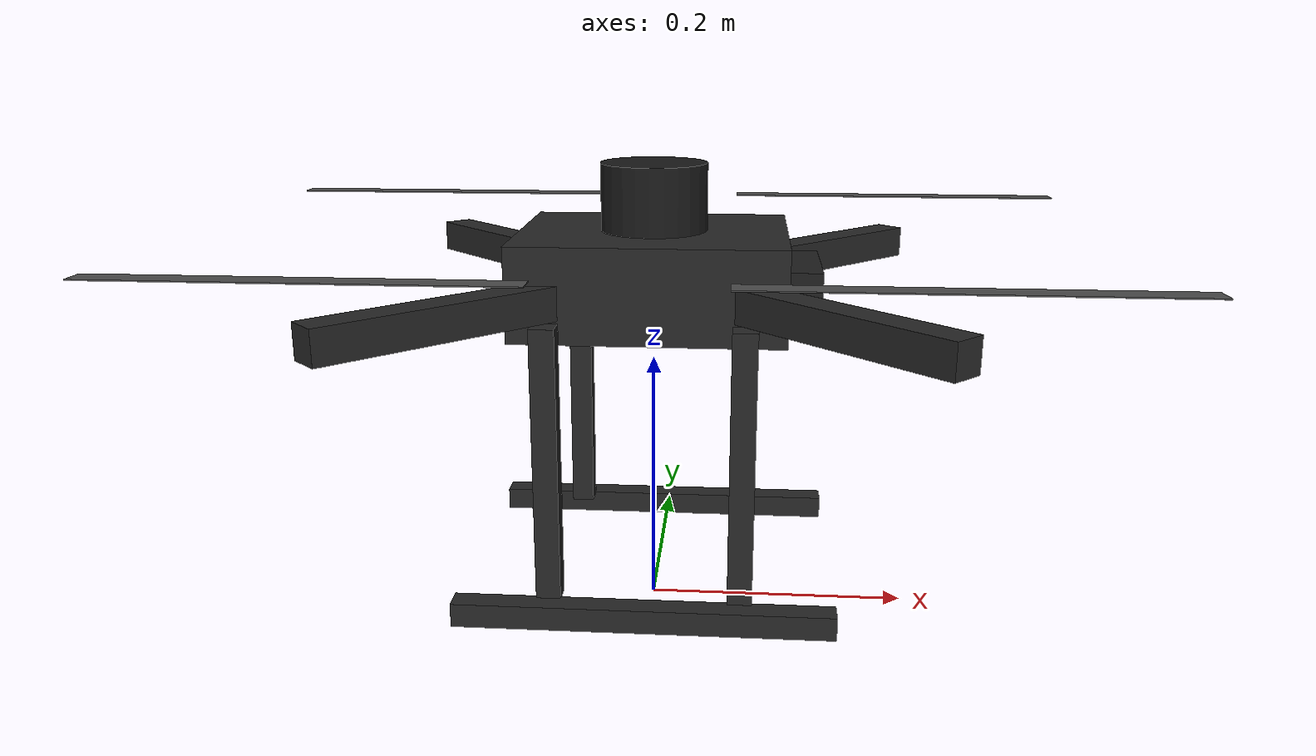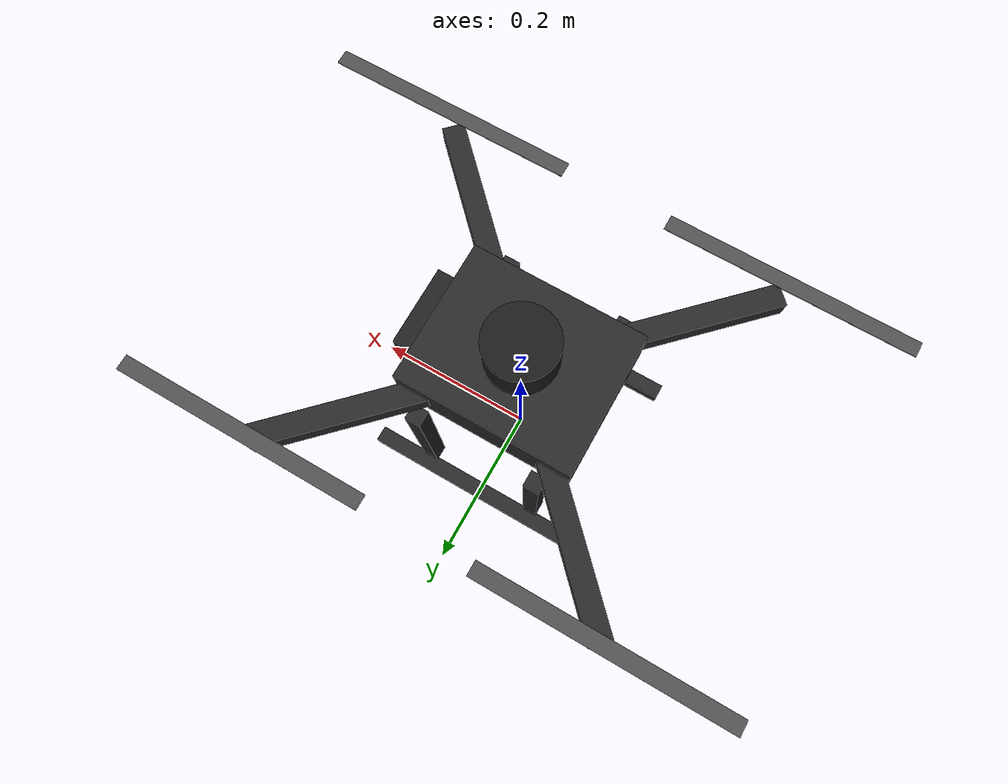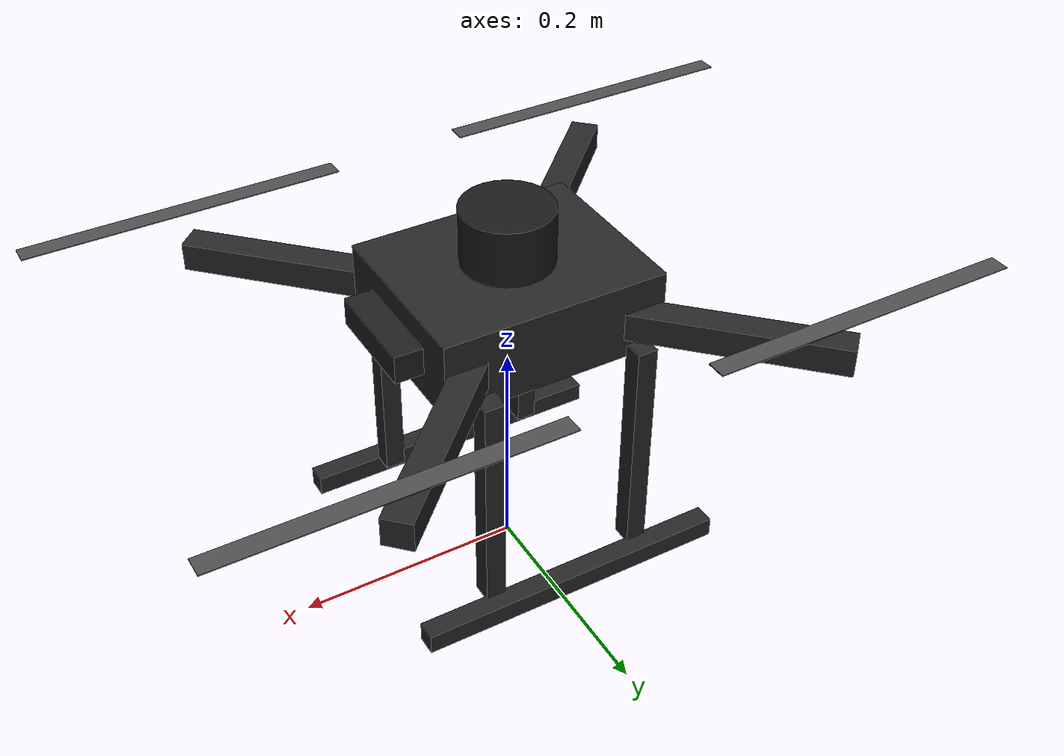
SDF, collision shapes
<?xml version="1.0" encoding="UTF-8"?>
<sdf version='1.9'>
  <model name='slam_quad_base'>
    <pose>0 0 .24 0 0 0</pose>
    <self_collide>false</self_collide>
    <static>false</static>
    <link name="base_link">
      <inertial>
        <!-- Approximate M3B-2 frame mass model: 1.80 kg base structure. -->
        <!-- The four rotor links keep their existing masses separately. -->
        <pose>0 0 -0.0034 0 0 0</pose>
        <mass>1.8</mass>
        <inertia>
          <ixx>0.01808</ixx>
          <ixy>0</ixy>
          <ixz>0</ixz>
          <iyy>0.01798</iyy>
          <iyz>0</iyz>
          <izz>0.01886</izz>
        </inertia>
      </inertial>
      <gravity>true</gravity>
      <velocity_decay />
      <!-- CUSTOM SLAM QUAD BODY           -->

      <visual name="custom_body_visual">
        <pose>0 0 0.025 0 0 0</pose>
        <geometry>
          <box>
            <size>0.20 0.16 0.07</size>
          </box>
        </geometry>
        <material>
          <ambient>0.10 0.10 0.10 1</ambient>
          <diffuse>0.15 0.15 0.15 1</diffuse>
        </material>
      </visual>

      <!-- Front-left arm -->
      <visual name="arm_fl_visual">
        <pose>0.100 0.100 0.02 0 0 0.785398</pose>
        <geometry>
          <box>
            <size>0.282843 0.025 0.025</size>
          </box>
        </geometry>
        <material>
          <ambient>0.12 0.12 0.12 1</ambient>
          <diffuse>0.18 0.18 0.18 1</diffuse>
        </material>
      </visual>

      <!-- Rear-left arm -->
      <visual name="arm_rl_visual">
        <pose>-0.100 0.100 0.02 0 0 2.356194</pose>
        <geometry>
          <box>
            <size>0.282843 0.025 0.025</size>
          </box>
        </geometry>
        <material>
          <ambient>0.12 0.12 0.12 1</ambient>
          <diffuse>0.18 0.18 0.18 1</diffuse>
        </material>
      </visual>

      <!-- Front-right arm -->
      <visual name="arm_fr_visual">
        <pose>0.100 -0.100 0.02 0 0 -0.785398</pose>
        <geometry>
          <box>
            <size>0.282843 0.025 0.025</size>
          </box>
        </geometry>
        <material>
          <ambient>0.12 0.12 0.12 1</ambient>
          <diffuse>0.18 0.18 0.18 1</diffuse>
        </material>
      </visual>

      <!-- Rear-right arm -->
      <visual name="arm_rr_visual">
        <pose>-0.100 -0.100 0.02 0 0 -2.356194</pose>
        <geometry>
          <box>
            <size>0.282843 0.025 0.025</size>
          </box>
        </geometry>
        <material>
          <ambient>0.12 0.12 0.12 1</ambient>
          <diffuse>0.18 0.18 0.18 1</diffuse>
        </material>
      </visual>
      <!-- CUSTOM LANDING SKIDS            -->

      <visual name="skid_support_fl_visual">
        <pose>0.07 0.095 -0.095 0 0 0</pose>
        <geometry>
          <box>
            <size>0.018 0.018 0.205</size>
          </box>
        </geometry>
        <material>
          <ambient>0.22 0.22 0.22 1</ambient>
          <diffuse>0.28 0.28 0.28 1</diffuse>
        </material>
      </visual>

      <visual name="skid_support_rl_visual">
        <pose>-0.07 0.095 -0.095 0 0 0</pose>
        <geometry>
          <box>
            <size>0.018 0.018 0.205</size>
          </box>
        </geometry>
        <material>
          <ambient>0.22 0.22 0.22 1</ambient>
          <diffuse>0.28 0.28 0.28 1</diffuse>
        </material>
      </visual>

      <visual name="skid_support_fr_visual">
        <pose>0.07 -0.095 -0.095 0 0 0</pose>
        <geometry>
          <box>
            <size>0.018 0.018 0.205</size>
          </box>
        </geometry>
        <material>
          <ambient>0.22 0.22 0.22 1</ambient>
          <diffuse>0.28 0.28 0.28 1</diffuse>
        </material>
      </visual>

      <visual name="skid_support_rr_visual">
        <pose>-0.07 -0.095 -0.095 0 0 0</pose>
        <geometry>
          <box>
            <size>0.018 0.018 0.205</size>
          </box>
        </geometry>
        <material>
          <ambient>0.22 0.22 0.22 1</ambient>
          <diffuse>0.28 0.28 0.28 1</diffuse>
        </material>
      </visual>

      <visual name="skid_left_visual">
        <pose>0 0.11 -0.205 0 0 0</pose>
        <geometry>
          <box>
            <size>0.28 0.018 0.018</size>
          </box>
        </geometry>
        <material>
          <ambient>0.30 0.30 0.30 1</ambient>
          <diffuse>0.38 0.38 0.38 1</diffuse>
        </material>
      </visual>

      <visual name="skid_right_visual">
        <pose>0 -0.11 -0.205 0 0 0</pose>
        <geometry>
          <box>
            <size>0.28 0.018 0.018</size>
          </box>
        </geometry>
        <material>
          <ambient>0.30 0.30 0.30 1</ambient>
          <diffuse>0.38 0.38 0.38 1</diffuse>
        </material>
      </visual>
      <visual name="5010_motor_base_0">
        <pose>0.200 0.200 .032 0 0 -.45</pose>
        <geometry>
          <mesh>
            <scale>1 1 1</scale>
            <uri>model://slam_quad_base/meshes/5010Base.dae</uri>
          </mesh>
        </geometry>
      </visual>
      <visual name="5010_motor_base_1">
        <pose>-0.200 0.200 .032 0 0 -.45</pose>
        <geometry>
          <mesh>
            <scale>1 1 1</scale>
            <uri>model://slam_quad_base/meshes/5010Base.dae</uri>
          </mesh>
        </geometry>
      </visual>
      <visual name="5010_motor_base_2">
        <pose>0.200 -0.200 .032 0 0 -.45</pose>
        <geometry>
          <mesh>
            <scale>1 1 1</scale>
            <uri>model://slam_quad_base/meshes/5010Base.dae</uri>
          </mesh>
        </geometry>
      </visual>
      <visual name="5010_motor_base_3">
        <pose>-0.200 -0.200 .032 0 0 -.45</pose>
        <geometry>
          <mesh>
            <scale>1 1 1</scale>
            <uri>model://slam_quad_base/meshes/5010Base.dae</uri>
          </mesh>
        </geometry>
      </visual>
      <visual name="NXP_FMUK66_FRONT">
        <pose>0.047 .001 .043 1 0 1.57</pose>
        <cast_shadows>false</cast_shadows>
        <geometry>
          <plane>
            <normal>0 0 1</normal>
            <size>.013 .007</size>
          </plane>
        </geometry>
        <material>
          <diffuse>1.0 1.0 1.0</diffuse>
          <specular>1.0 1.0 1.0</specular>
          <pbr>
            <metal>
              <albedo_map>model://slam_quad_base/materials/textures/nxp.png</albedo_map>
            </metal>
          </pbr>
        </material>
      </visual>
      <visual name="NXP_FMUK66_TOP">
        <pose>-0.023 0 .0515 0 0 -1.57</pose>
        <cast_shadows>false</cast_shadows>
        <geometry>
          <plane>
            <normal>0 0 1</normal>
            <size>.013 .007</size>
          </plane>
        </geometry>
        <material>
          <diffuse>1.0 1.0 1.0</diffuse>
          <specular>1.0 1.0 1.0</specular>
          <pbr>
            <metal>
              <albedo_map>model://slam_quad_base/materials/textures/nxp.png</albedo_map>
            </metal>
          </pbr>
        </material>
      </visual>
      <visual name="RDDRONE_FMUK66_TOP">
        <pose>-.03 0 .0515 0 0 -1.57</pose>
        <cast_shadows>false</cast_shadows>
        <geometry>
          <plane>
            <normal>0 0 1</normal>
            <size>.032 .0034</size>
          </plane>
        </geometry>
        <material>
          <diffuse>1.0 1.0 1.0</diffuse>
          <specular>1.0 1.0 1.0</specular>
          <pbr>
            <metal>
              <albedo_map>model://slam_quad_base/materials/textures/rd.png</albedo_map>
            </metal>
          </pbr>
        </material>
      </visual>
      <!-- CUSTOM FRAME COLLISIONS         -->

      <collision name="body_collision">
        <pose>0 0 0.025 0 0 0</pose>
        <geometry>
          <box>
            <size>0.20 0.16 0.07</size>
          </box>
        </geometry>
      </collision>

      <collision name="arm_fl_collision">
        <pose>0.100 0.100 0.02 0 0 0.785398</pose>
        <geometry>
          <box>
            <size>0.282843 0.025 0.025</size>
          </box>
        </geometry>
      </collision>

      <collision name="arm_rl_collision">
        <pose>-0.100 0.100 0.02 0 0 2.356194</pose>
        <geometry>
          <box>
            <size>0.282843 0.025 0.025</size>
          </box>
        </geometry>
      </collision>

      <collision name="arm_fr_collision">
        <pose>0.100 -0.100 0.02 0 0 -0.785398</pose>
        <geometry>
          <box>
            <size>0.282843 0.025 0.025</size>
          </box>
        </geometry>
      </collision>

      <collision name="arm_rr_collision">
        <pose>-0.100 -0.100 0.02 0 0 -2.356194</pose>
        <geometry>
          <box>
            <size>0.282843 0.025 0.025</size>
          </box>
        </geometry>
      </collision>

      <collision name="skid_support_fl_collision">
        <pose>0.07 0.095 -0.095 0 0 0</pose>
        <geometry>
          <box>
            <size>0.018 0.018 0.205</size>
          </box>
        </geometry>
      </collision>

      <collision name="skid_support_rl_collision">
        <pose>-0.07 0.095 -0.095 0 0 0</pose>
        <geometry>
          <box>
            <size>0.018 0.018 0.205</size>
          </box>
        </geometry>
      </collision>

      <collision name="skid_support_fr_collision">
        <pose>0.07 -0.095 -0.095 0 0 0</pose>
        <geometry>
          <box>
            <size>0.018 0.018 0.205</size>
          </box>
        </geometry>
      </collision>

      <collision name="skid_support_rr_collision">
        <pose>-0.07 -0.095 -0.095 0 0 0</pose>
        <geometry>
          <box>
            <size>0.018 0.018 0.205</size>
          </box>
        </geometry>
      </collision>

      <collision name="skid_left_collision">
        <pose>0 0.11 -0.205 0 0 0</pose>
        <geometry>
          <box>
            <size>0.28 0.018 0.018</size>
          </box>
        </geometry>
        <surface>
          <contact>
            <ode>
              <min_depth>0.001</min_depth>
              <max_vel>0</max_vel>
            </ode>
          </contact>
          <friction>
            <ode />
          </friction>
        </surface>
      </collision>

      <collision name="skid_right_collision">
        <pose>0 -0.11 -0.205 0 0 0</pose>
        <geometry>
          <box>
            <size>0.28 0.018 0.018</size>
          </box>
        </geometry>
        <surface>
          <contact>
            <ode>
              <min_depth>0.001</min_depth>
              <max_vel>0</max_vel>
            </ode>
          </contact>
          <friction>
            <ode />
          </friction>
        </surface>
      </collision>
      <sensor name="air_pressure_sensor" type="air_pressure">
        <gz_frame_id>base_link</gz_frame_id>
        <always_on>1</always_on>
        <update_rate>50</update_rate>
        <air_pressure>
          <!-- Noise modeled after BMP390 -->
          <pressure>
            <noise type="gaussian">
              <mean>0</mean>
              <stddev>3</stddev>
            </noise>
          </pressure>
        </air_pressure>
      </sensor>
      <sensor name="magnetometer_sensor" type="magnetometer">
        <gz_frame_id>base_link</gz_frame_id>
        <always_on>1</always_on>
        <update_rate>100</update_rate>
        <magnetometer>
          <!-- TODO: update to fix units and coordinate system when we move past Harmonic -->
          <!-- See https://github.com/gazebosim/gz-sim/pull/2460 -->
          <!-- 3mgauss RMS: NOTE: noise is in tesla but sensor reports data in gauss -->
          <!-- Noise modeled after IIS2MDC -->
          <x>
            <noise type="gaussian">
              <stddev>0.0001</stddev>
            </noise>
          </x>
          <y>
            <noise type="gaussian">
              <stddev>0.0001</stddev>
            </noise>
          </y>
          <z>
            <noise type="gaussian">
              <stddev>0.0001</stddev>
            </noise>
          </z>
        </magnetometer>
      </sensor>
      <sensor name="imu_sensor" type="imu">
        <gz_frame_id>base_link</gz_frame_id>
        <always_on>1</always_on>
        <update_rate>250</update_rate>
        <imu>
          <angular_velocity>
            <!-- Noise modeled after IIM42653 -->
            <!-- 0.05 deg/s converted to rad/s -->
            <x>
              <noise type="gaussian">
                <mean>0.0</mean>
                <stddev>0.0008726646</stddev>
              </noise>
            </x>
            <y>
              <noise type="gaussian">
                <mean>0.0</mean>
                <stddev>0.0008726646</stddev>
              </noise>
            </y>
            <z>
              <noise type="gaussian">
                <mean>0.0</mean>
                <stddev>0.0008726646</stddev>
              </noise>
            </z>
          </angular_velocity>
          <linear_acceleration>
            <!-- Noise modeled after IIM42653 -->
            <!-- X & Y axis: 0.65 mg-rms converted to m/ss -->
            <x>
              <noise type="gaussian">
                <mean>0.0</mean>
                <stddev>0.00637</stddev>
              </noise>
            </x>
            <y>
              <noise type="gaussian">
                <mean>0.0</mean>
                <stddev>0.00637</stddev>
              </noise>
            </y>
            <!-- Z axis: 0.70 mg-rms converted to m/ss-->
            <z>
              <noise type="gaussian">
                <mean>0.0</mean>
                <stddev>0.00686</stddev>
              </noise>
            </z>
          </linear_acceleration>
        </imu>
      </sensor>
      <sensor name="navsat_sensor" type="navsat">
        <gz_frame_id>base_link</gz_frame_id>
        <always_on>1</always_on>
        <update_rate>30</update_rate>
      </sensor>
    </link>
    <!-- 3D LIDAR                                               -->

    <link name="lidar_link">
      <pose relative_to="base_link">0 0 0.085 0 0 0</pose>

      <!-- Placeholder physical properties for compact 3D LiDAR -->
      <inertial>
        <mass>0.15</mass>
        <inertia>
          <ixx>0.00009125</ixx>
          <ixy>0</ixy>
          <ixz>0</ixz>
          <iyy>0.00009125</iyy>
          <iyz>0</iyz>
          <izz>0.00012</izz>
        </inertia>
      </inertial>

      <visual name="lidar_visual">
        <geometry>
          <cylinder>
            <radius>0.04</radius>
            <length>0.05</length>
          </cylinder>
        </geometry>
        <material>
          <ambient>0.05 0.05 0.05 1</ambient>
          <diffuse>0.10 0.10 0.10 1</diffuse>
        </material>
      </visual>

      <collision name="lidar_collision">
        <geometry>
          <cylinder>
            <radius>0.04</radius>
            <length>0.05</length>
          </cylinder>
        </geometry>
      </collision>

      <sensor name="gpu_lidar" type="gpu_lidar">
        <gz_frame_id>lidar_link</gz_frame_id>

        <topic>/slam_quad/lidar</topic>

        <update_rate>10</update_rate>

        <lidar>
          <scan>

            <horizontal>
              <samples>640</samples>
              <resolution>1</resolution>
              <min_angle>-3.14159265</min_angle>
              <max_angle>3.14159265</max_angle>
            </horizontal>

            <vertical>
              <samples>32</samples>
              <resolution>1</resolution>
              <min_angle>-0.261799</min_angle>
              <max_angle>0.261799</max_angle>
            </vertical>

          </scan>

          <range>
            <min>0.20</min>
            <max>20.0</max>
            <resolution>0.01</resolution>
          </range>
        </lidar>

        <always_on>1</always_on>
        <visualize>false</visualize>
      </sensor>
    </link>

    <joint name="lidar_joint" type="fixed">
      <parent>base_link</parent>
      <child>lidar_link</child>
    </joint>
    <!-- FRONT-FACING RGB-D CAMERA                              -->

    <link name="camera_link">

      <!-- Mounted against the front (+X) face of the body -->
      <pose relative_to="base_link">0.1125 0 0.025 0 0 0</pose>

      <inertial>
        <mass>0.072</mass>
        <inertia>
          <ixx>0.000053</ixx>
          <ixy>0</ixy>
          <ixz>0</ixz>
          <iyy>0.000005</iyy>
          <iyz>0</iyz>
          <izz>0.000053</izz>
        </inertia>
      </inertial>

      <visual name="camera_visual">
        <geometry>
          <box>
            <size>0.025 0.090 0.025</size>
          </box>
        </geometry>

        <material>
          <ambient>0.08 0.08 0.08 1</ambient>
          <diffuse>0.12 0.12 0.12 1</diffuse>
        </material>
      </visual>

      <collision name="camera_collision">
        <geometry>
          <box>
            <size>0.025 0.090 0.025</size>
          </box>
        </geometry>
      </collision>

      <sensor name="rgbd_camera" type="rgbd_camera">

        <gz_frame_id>camera_link</gz_frame_id>

        <camera>

          <optical_frame_id>camera_optical_frame</optical_frame_id>

          <horizontal_fov>1.047</horizontal_fov>

          <image>
            <width>320</width>
            <height>240</height>
          </image>

          <clip>
            <near>0.15</near>
            <far>10.0</far>
          </clip>
        </camera>

        <always_on>1</always_on>

        <!-- Moderate rate to avoid unnecessarily loading the PC -->
        <update_rate>10</update_rate>

        <visualize>false</visualize>

        <topic>/slam_quad/rgbd</topic>

      </sensor>
    </link>

    <joint name="camera_joint" type="fixed">
      <parent>base_link</parent>
      <child>camera_link</child>
    </joint>
    <link name="rotor_0">
      <gravity>true</gravity>
      <self_collide>false</self_collide>
      <velocity_decay />
      <pose>0.200 -0.200 0.06 0 0 0</pose>
      <inertial>
        <mass>0.016076923076923075</mass>
        <inertia>
          <ixx>3.8464910483993325e-07</ixx>
          <iyy>2.6115851691700804e-05</iyy>
          <izz>2.649858234714004e-05</izz>
        </inertia>
      </inertial>
      <visual name="rotor_0_visual">
        <pose>-0.022 -0.14638461538461536 -0.016 0 0 0</pose>
        <geometry>
          <mesh>
            <scale>0.8461538461538461 0.8461538461538461 0.8461538461538461</scale>
            <uri>model://slam_quad_base/meshes/1345_prop_ccw.stl</uri>
          </mesh>
        </geometry>
        <material>
          <script>
            <name>Gazebo/DarkGrey</name>
            <uri>file://media/materials/scripts/gazebo.material</uri>
          </script>
        </material>
      </visual>
      <visual name="rotor_0_visual_motor_bell">
        <pose>0 0 -.032 0 0 0</pose>
        <geometry>
          <mesh>
            <scale>1 1 1</scale>
            <uri>model://slam_quad_base/meshes/5010Bell.dae</uri>
          </mesh>
        </geometry>
      </visual>
      <collision name="rotor_0_collision">
        <pose>0 0 0 0 0 0 </pose>
        <geometry>
          <box>
            <size>0.2792307692307692 0.016923076923076923 0.0008461538461538462</size>
          </box>
        </geometry>
        <surface>
          <contact>
            <ode>
              <min_depth>0.001</min_depth>
              <max_vel>0</max_vel>
            </ode>
          </contact>
          <friction>
            <ode />
          </friction>
        </surface>
      </collision>
    </link>
    <joint name="rotor_0_joint" type="revolute">
      <parent>base_link</parent>
      <child>rotor_0</child>
      <axis>
        <xyz>0 0 1</xyz>
        <limit>
          <lower>-1e+16</lower>
          <upper>1e+16</upper>
        </limit>
        <dynamics>
          <spring_reference>0</spring_reference>
          <spring_stiffness>0</spring_stiffness>
        </dynamics>
      </axis>
    </joint>
    <link name="rotor_1">
      <gravity>true</gravity>
      <self_collide>false</self_collide>
      <velocity_decay />
      <pose>-0.200 0.200 0.06 0 0 0</pose>
      <inertial>
        <mass>0.016076923076923075</mass>
        <inertia>
          <ixx>3.8464910483993325e-07</ixx>
          <iyy>2.6115851691700804e-05</iyy>
          <izz>2.649858234714004e-05</izz>
        </inertia>
      </inertial>
      <visual name="rotor_1_visual">
        <pose>-0.022 -0.14638461538461536 -0.016 0 0 0</pose>
        <geometry>
          <mesh>
            <scale>0.8461538461538461 0.8461538461538461 0.8461538461538461</scale>
            <uri>model://slam_quad_base/meshes/1345_prop_ccw.stl</uri>
          </mesh>
        </geometry>
        <material>
          <script>
            <name>Gazebo/DarkGrey</name>
            <uri>file://media/materials/scripts/gazebo.material</uri>
          </script>
        </material>
      </visual>
      <visual name="rotor_1_visual_motor_top">
        <pose>0 0 -.032 0 0 0</pose>
        <geometry>
          <mesh>
            <scale>1 1 1</scale>
            <uri>model://slam_quad_base/meshes/5010Bell.dae</uri>
          </mesh>
        </geometry>
      </visual>
      <collision name="rotor_1_collision">
        <pose>0 0 0 0 0 0 </pose>
        <geometry>
          <box>
            <size>0.2792307692307692 0.016923076923076923 0.0008461538461538462</size>
          </box>
        </geometry>
        <surface>
          <contact>
            <ode>
              <min_depth>0.001</min_depth>
              <max_vel>0</max_vel>
            </ode>
          </contact>
          <friction>
            <ode />
          </friction>
        </surface>
      </collision>
    </link>
    <joint name="rotor_1_joint" type="revolute">
      <parent>base_link</parent>
      <child>rotor_1</child>
      <axis>
        <xyz>0 0 1</xyz>
        <limit>
          <lower>-1e+16</lower>
          <upper>1e+16</upper>
        </limit>
        <dynamics>
          <spring_reference>0</spring_reference>
          <spring_stiffness>0</spring_stiffness>
        </dynamics>
      </axis>
    </joint>
    <link name="rotor_2">
      <gravity>true</gravity>
      <self_collide>false</self_collide>
      <velocity_decay />
      <pose>0.200 0.200 0.06 0 0 0</pose>
      <inertial>
        <mass>0.016076923076923075</mass>
        <inertia>
          <ixx>3.8464910483993325e-07</ixx>
          <iyy>2.6115851691700804e-05</iyy>
          <izz>2.649858234714004e-05</izz>
        </inertia>
      </inertial>
      <visual name="rotor_2_visual">
        <pose>-0.022 -0.14638461538461536 -0.016 0 0 0</pose>
        <geometry>
          <mesh>
            <scale>0.8461538461538461 0.8461538461538461 0.8461538461538461</scale>
            <uri>model://slam_quad_base/meshes/1345_prop_cw.stl</uri>
          </mesh>
        </geometry>
        <material>
          <script>
            <name>Gazebo/DarkGrey</name>
            <uri>file://media/materials/scripts/gazebo.material</uri>
          </script>
        </material>
      </visual>
      <visual name="rotor_2_visual_motor_top">
        <pose>0 0 -.032 0 0 0</pose>
        <geometry>
          <mesh>
            <scale>1 1 1</scale>
            <uri>model://slam_quad_base/meshes/5010Bell.dae</uri>
          </mesh>
        </geometry>
      </visual>
      <collision name="rotor_2_collision">
        <pose>0 0 0 0 0 0 </pose>
        <geometry>
          <box>
            <size>0.2792307692307692 0.016923076923076923 0.0008461538461538462</size>
          </box>
        </geometry>
        <surface>
          <contact>
            <ode>
              <min_depth>0.001</min_depth>
              <max_vel>0</max_vel>
            </ode>
          </contact>
          <friction>
            <ode />
          </friction>
        </surface>
      </collision>
    </link>
    <joint name="rotor_2_joint" type="revolute">
      <parent>base_link</parent>
      <child>rotor_2</child>
      <axis>
        <xyz>0 0 1</xyz>
        <limit>
          <lower>-1e+16</lower>
          <upper>1e+16</upper>
        </limit>
        <dynamics>
          <spring_reference>0</spring_reference>
          <spring_stiffness>0</spring_stiffness>
        </dynamics>
      </axis>
    </joint>
    <link name="rotor_3">
      <gravity>true</gravity>
      <self_collide>false</self_collide>
      <velocity_decay />
      <pose>-0.200 -0.200 0.06 0 0 0</pose>
      <inertial>
        <mass>0.016076923076923075</mass>
        <inertia>
          <ixx>3.8464910483993325e-07</ixx>
          <iyy>2.6115851691700804e-05</iyy>
          <izz>2.649858234714004e-05</izz>
        </inertia>
      </inertial>
      <visual name="rotor_3_visual">
        <pose>-0.022 -0.14638461538461536 -0.016 0 0 0</pose>
        <geometry>
          <mesh>
            <scale>0.8461538461538461 0.8461538461538461 0.8461538461538461</scale>
            <uri>model://slam_quad_base/meshes/1345_prop_cw.stl</uri>
          </mesh>
        </geometry>
        <material>
          <script>
            <name>Gazebo/DarkGrey</name>
            <uri>file://media/materials/scripts/gazebo.material</uri>
          </script>
        </material>
      </visual>
      <visual name="rotor_3_visual_motor_top">
        <pose>0 0 -.032 0 0 0</pose>
        <geometry>
          <mesh>
            <scale>1 1 1</scale>
            <uri>model://slam_quad_base/meshes/5010Bell.dae</uri>
          </mesh>
        </geometry>
      </visual>
      <collision name="rotor_3_collision">
        <pose>0 0 0 0 0 0 </pose>
        <geometry>
          <box>
            <size>0.2792307692307692 0.016923076923076923 0.0008461538461538462</size>
          </box>
        </geometry>
        <surface>
          <contact>
            <ode>
              <min_depth>0.001</min_depth>
              <max_vel>0</max_vel>
            </ode>
          </contact>
          <friction>
            <ode />
          </friction>
        </surface>
      </collision>
    </link>
    <joint name="rotor_3_joint" type="revolute">
      <parent>base_link</parent>
      <child>rotor_3</child>
      <axis>
        <xyz>0 0 1</xyz>
        <limit>
          <lower>-1e+16</lower>
          <upper>1e+16</upper>
        </limit>
        <dynamics>
          <spring_reference>0</spring_reference>
          <spring_stiffness>0</spring_stiffness>
        </dynamics>
      </axis>
    </joint>
  </model>
</sdf>
